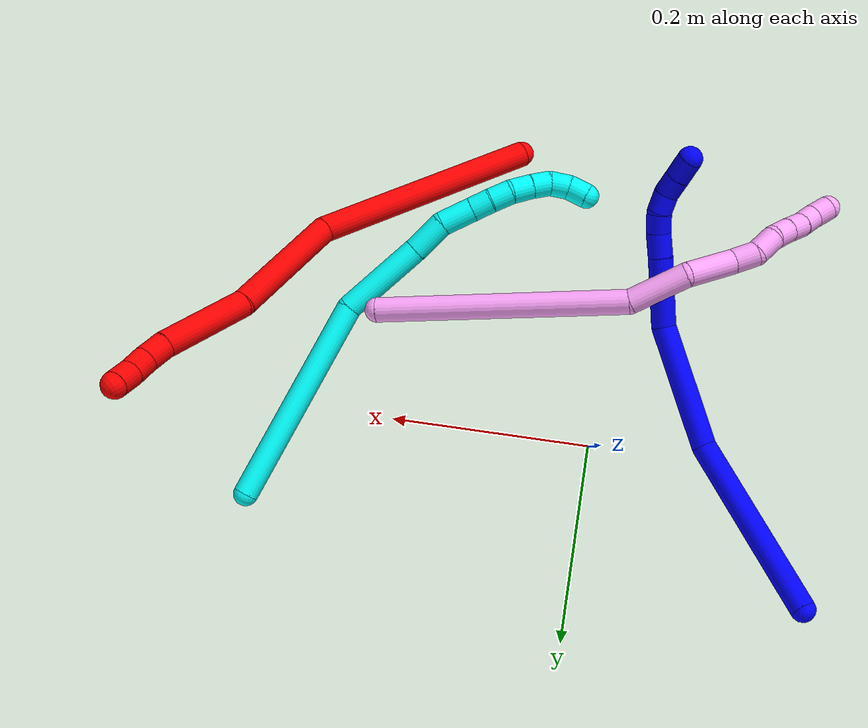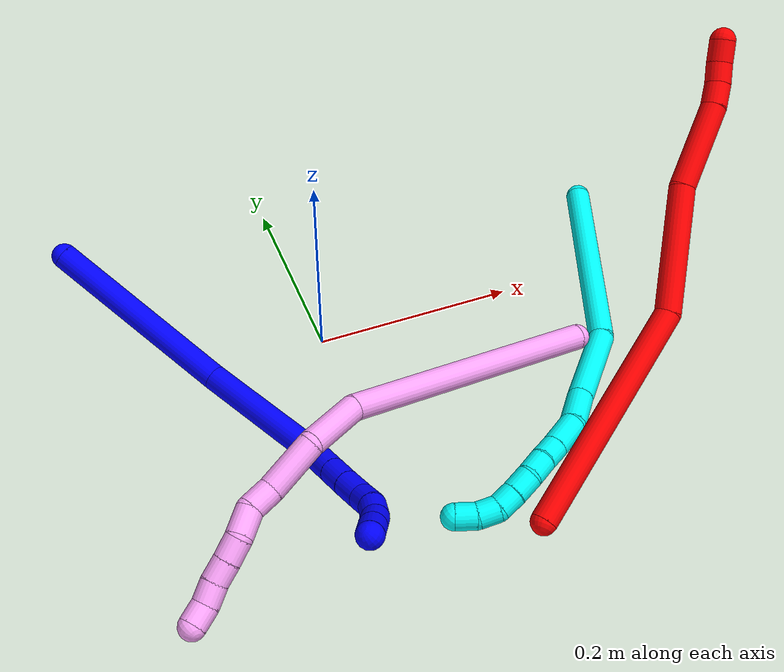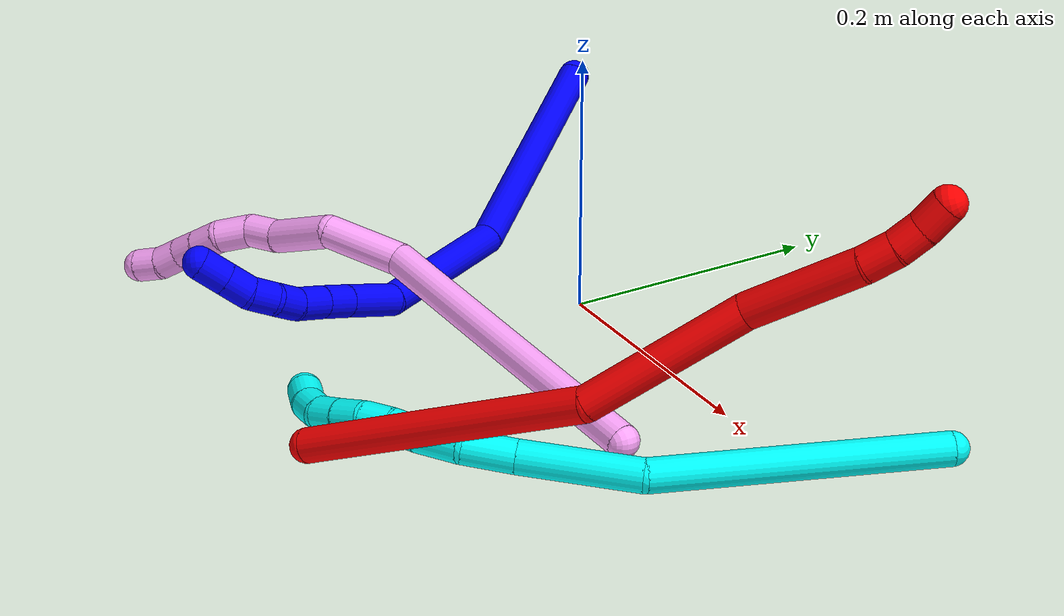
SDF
<sdf version="1.7">
 <world name="default">
  <plugin name="TubeGeneratorPlugin" filename="libtube_generator_plugin.so"/>
  <model name="photoneo_s_sensor">
   <static>1</static>
   <pose>0 0 2 1.57079 1.57079 3.14159</pose>
   <link name="link">
    <inertial><mass>0.1</mass></inertial>
    <sensor name="sensor" type="depth">
     <update_rate>30</update_rate>
     <camera>
      <horizontal_fov>1.22</horizontal_fov>
      <image><width>1920</width><height>1200</height><format>B8G8R8</format></image>
      <clip><near>0.1</near><far>4</far></clip>
      <depth_camera><output>points</output></depth_camera>
     </camera>
     <plugin name="camera_plugin" filename="libgazebo_ros_depth_camera.so">
      <baseline>0.2</baseline>
      <alwaysOn>1</alwaysOn>
      <updateRate>0.0</updateRate>
      <cameraName>camera_ir</cameraName>
      <imageTopicName>/camera/color/image_raw</imageTopicName>
      <cameraInfoTopicName>/camera/color/camera_info</cameraInfoTopicName>
      <depthImageTopicName>/camera/depth/image_raw</depthImageTopicName>
      <depthImageCameraInfoTopicName>/camera/depth/camera_info</depthImageCameraInfoTopicName>
      <pointCloudTopicName>/camera/depth/points</pointCloudTopicName>
      <frameName>fr_optical</frameName>
      <pointCloudCutoff>0.1</pointCloudCutoff>
      <pointCloudCutoffMax>2.0</pointCloudCutoffMax>
      <distortionK1>0</distortionK1>
      <distortionK2>0</distortionK2>
      <distortionK3>0</distortionK3>
      <distortionT1>0</distortionT1>
      <distortionT2>0</distortionT2>
      <CxPrime>0</CxPrime>
      <Cx>0</Cx>
      <Cy>0</Cy>
      <focalLength>0</focalLength>
      <hackBaseline>0</hackBaseline>
     </plugin>
    </sensor>
   </link>
  </model>
  <gravity>0 0 -9.8</gravity>
  <magnetic_field>6e-06 2.3e-05 -4.2e-05</magnetic_field>
  <atmosphere type="adiabatic"/>
  <physics name="default_physics" default="0" type="ode">
   <max_step_size>0.003</max_step_size>
   <real_time_factor>1</real_time_factor>
   <real_time_update_rate>1000</real_time_update_rate>
   <max_contacts>10000</max_contacts>
   <ode>
    <solver>
     <type>quick</type>
     <iters>100</iters>
     <sor>1.3</sor>
     <use_dynamic_moi_rescaling>0</use_dynamic_moi_rescaling>
    </solver>
    <constraints>
     <contact_max_correcting_vel>0</contact_max_correcting_vel>
     <contact_surface_layer>0.001</contact_surface_layer>
     <cfm>0</cfm>
     <erp>0.2</erp>
    </constraints>
   </ode>
  </physics>
  <scene><ambient>0.4 0.4 0.4 1</ambient><background>0.7 0.7 0.7 1</background><shadows>0</shadows></scene>
  <audio><device>default</device></audio>
  <spherical_coordinates>
   <surface_model>EARTH_WGS84</surface_model>
   <latitude_deg>0</latitude_deg>
   <longitude_deg>0</longitude_deg>
   <elevation>0</elevation>
   <heading_deg>0</heading_deg>
  </spherical_coordinates>
  <model name="bin">
   <static>1</static>
   <link name="bottom">
    <collision name="collision-bottom">
     <pose>0 0 -0.01 0 -0 0</pose>
     <geometry><box><size>0.8 0.6 0.02</size></box></geometry>
     <surface>
      <friction><ode><mu>100</mu><mu2>100</mu2></ode></friction>
      <contact><collide_bitmask>65535</collide_bitmask></contact>
     </surface>
    </collision>
   </link>
   <link name="west_wall">
    <collision name="collision-west_wall">
     <pose>-0.41 0 0.1 0 -0 0</pose>
     <geometry><box><size>0.02 0.6 0.2</size></box></geometry>
     <surface>
      <friction><ode><mu>100</mu><mu2>100</mu2></ode></friction>
      <contact><collide_bitmask>65535</collide_bitmask></contact>
     </surface>
    </collision>
   </link>
   <link name="east_wall">
    <collision name="collision-east_wall">
     <pose>0.41 0 0.1 0 -0 0</pose>
     <geometry><box><size>0.02 0.6 0.2</size></box></geometry>
     <surface>
      <friction><ode><mu>100</mu><mu2>100</mu2></ode></friction>
      <contact><collide_bitmask>65535</collide_bitmask></contact>
     </surface>
    </collision>
   </link>
   <link name="south_wall">
    <collision name="collision-south_wall">
     <pose>0 -0.31 0.1 0 -0 0</pose>
     <geometry><box><size>0.8 0.02 0.2</size></box></geometry>
     <surface>
      <friction><ode><mu>100</mu><mu2>100</mu2></ode></friction>
      <contact><collide_bitmask>65535</collide_bitmask></contact>
     </surface>
    </collision>
   </link>
   <link name="north_wall">
    <collision name="collision-north_wall">
     <pose>0 0.31 0.1 0 -0 0</pose>
     <geometry><box><size>0.8 0.02 0.2</size></box></geometry>
     <surface>
      <friction><ode><mu>100</mu><mu2>100</mu2></ode></friction>
      <contact><collide_bitmask>65535</collide_bitmask></contact>
     </surface>
    </collision>
   </link>
  </model>
  <model name="1">
   <static>0</static>
   <link name="1">
    <collision name="collision-cylinder-e_1_1_4">
     <pose>0.023483 -0.064623 -0.066367 2.36951 0.24828 0.595759</pose>
     <geometry><cylinder><radius>0.0125</radius><length>0.191125</length></cylinder></geometry>
     <surface>
      <friction><ode><mu>1.16</mu><mu2>1.16</mu2><slip1>0</slip1><slip2>0</slip2></ode></friction>
      <contact><ode><kp>1e+06</kp><kd>1</kd><max_vel>0</max_vel><min_depth>0.001</min_depth></ode></contact>
     </surface>
    </collision>
    <visual name="visual-cylinder-e_1_1_4">
     <pose>0.023483 -0.064623 -0.066367 2.36951 0.24828 0.595759</pose>
     <geometry><cylinder><radius>0.0125</radius><length>0.191125</length></cylinder></geometry>
     <material><ambient>0 0 1 1</ambient></material>
    </visual>
    <collision name="collision-cylinder-e_2_4_5">
     <pose>0.067709 -0.185803 -0.154476 1.93781 0.329825 0.47539</pose>
     <geometry><cylinder><radius>0.0125</radius><length>0.128088</length></cylinder></geometry>
     <surface>
      <friction><ode><mu>1.16</mu><mu2>1.16</mu2><slip1>0</slip1><slip2>0</slip2></ode></friction>
      <contact><ode><kp>1e+06</kp><kd>1</kd><max_vel>0</max_vel><min_depth>0.001</min_depth></ode></contact>
     </surface>
    </collision>
    <visual name="visual-cylinder-e_2_4_5">
     <pose>0.067709 -0.185803 -0.154476 1.93781 0.329825 0.47539</pose>
     <geometry><cylinder><radius>0.0125</radius><length>0.128088</length></cylinder></geometry>
     <material><ambient>0 0 1 1</ambient></material>
    </visual>
    <collision name="collision-cylinder-e_3_5_6">
     <pose>0.094476 -0.264981 -0.175436 1.53625 0.260136 0.251396</pose>
     <geometry><cylinder><radius>0.0125</radius><length>0.046847</length></cylinder></geometry>
     <surface>
      <friction><ode><mu>1.16</mu><mu2>1.16</mu2><slip1>0</slip1><slip2>0</slip2></ode></friction>
      <contact><ode><kp>1e+06</kp><kd>1</kd><max_vel>0</max_vel><min_depth>0.001</min_depth></ode></contact>
     </surface>
    </collision>
    <visual name="visual-cylinder-e_3_5_6">
     <pose>0.094476 -0.264981 -0.175436 1.53625 0.260136 0.251396</pose>
     <geometry><cylinder><radius>0.0125</radius><length>0.046847</length></cylinder></geometry>
     <material><ambient>0 0 1 1</ambient></material>
    </visual>
    <collision name="collision-cylinder-e_4_6_7">
     <pose>0.103639 -0.29947 -0.174391 1.54862 0.25849 0.252882</pose>
     <geometry><cylinder><radius>0.0125</radius><length>0.024555</length></cylinder></geometry>
     <surface>
      <friction><ode><mu>1.16</mu><mu2>1.16</mu2><slip1>0</slip1><slip2>0</slip2></ode></friction>
      <contact><ode><kp>1e+06</kp><kd>1</kd><max_vel>0</max_vel><min_depth>0.001</min_depth></ode></contact>
     </surface>
    </collision>
    <visual name="visual-cylinder-e_4_6_7">
     <pose>0.103639 -0.29947 -0.174391 1.54862 0.25849 0.252882</pose>
     <geometry><cylinder><radius>0.0125</radius><length>0.024555</length></cylinder></geometry>
     <material><ambient>0 0 1 1</ambient></material>
    </visual>
    <collision name="collision-cylinder-e_5_7_8">
     <pose>0.110244 -0.323452 -0.174169 1.5742 0.278711 0.27965</pose>
     <geometry><cylinder><radius>0.0125</radius><length>0.025203</length></cylinder></geometry>
     <surface>
      <friction><ode><mu>1.16</mu><mu2>1.16</mu2><slip1>0</slip1><slip2>0</slip2></ode></friction>
      <contact><ode><kp>1e+06</kp><kd>1</kd><max_vel>0</max_vel><min_depth>0.001</min_depth></ode></contact>
     </surface>
    </collision>
    <visual name="visual-cylinder-e_5_7_8">
     <pose>0.110244 -0.323452 -0.174169 1.5742 0.278711 0.27965</pose>
     <geometry><cylinder><radius>0.0125</radius><length>0.025203</length></cylinder></geometry>
     <material><ambient>0 0 1 1</ambient></material>
    </visual>
    <collision name="collision-cylinder-e_6_8_9">
     <pose>0.116653 -0.345308 -0.171852 1.33328 0.285468 0.225187</pose>
     <geometry><cylinder><radius>0.0125</radius><length>0.02089</length></cylinder></geometry>
     <surface>
      <friction><ode><mu>1.16</mu><mu2>1.16</mu2><slip1>0</slip1><slip2>0</slip2></ode></friction>
      <contact><ode><kp>1e+06</kp><kd>1</kd><max_vel>0</max_vel><min_depth>0.001</min_depth></ode></contact>
     </surface>
    </collision>
    <visual name="visual-cylinder-e_6_8_9">
     <pose>0.116653 -0.345308 -0.171852 1.33328 0.285468 0.225187</pose>
     <geometry><cylinder><radius>0.0125</radius><length>0.02089</length></cylinder></geometry>
     <material><ambient>0 0 1 1</ambient></material>
    </visual>
    <collision name="collision-cylinder-e_7_9_10">
     <pose>0.119175 -0.364635 -0.166361 1.25487 -0.04152 -0.030112</pose>
     <geometry><cylinder><radius>0.0125</radius><length>0.020187</length></cylinder></geometry>
     <surface>
      <friction><ode><mu>1.16</mu><mu2>1.16</mu2><slip1>0</slip1><slip2>0</slip2></ode></friction>
      <contact><ode><kp>1e+06</kp><kd>1</kd><max_vel>0</max_vel><min_depth>0.001</min_depth></ode></contact>
     </surface>
    </collision>
    <visual name="visual-cylinder-e_7_9_10">
     <pose>0.119175 -0.364635 -0.166361 1.25487 -0.04152 -0.030112</pose>
     <geometry><cylinder><radius>0.0125</radius><length>0.020187</length></cylinder></geometry>
     <material><ambient>0 0 1 1</ambient></material>
    </visual>
    <collision name="collision-cylinder-e_8_10_11">
     <pose>0.117742 -0.382475 -0.157229 0.94242 -0.099107 -0.050525</pose>
     <geometry><cylinder><radius>0.0125</radius><length>0.020508</length></cylinder></geometry>
     <surface>
      <friction><ode><mu>1.16</mu><mu2>1.16</mu2><slip1>0</slip1><slip2>0</slip2></ode></friction>
      <contact><ode><kp>1e+06</kp><kd>1</kd><max_vel>0</max_vel><min_depth>0.001</min_depth></ode></contact>
     </surface>
    </collision>
    <visual name="visual-cylinder-e_8_10_11">
     <pose>0.117742 -0.382475 -0.157229 0.94242 -0.099107 -0.050525</pose>
     <geometry><cylinder><radius>0.0125</radius><length>0.020508</length></cylinder></geometry>
     <material><ambient>0 0 1 1</ambient></material>
    </visual>
    <collision name="collision-cylinder-e_9_11_2">
     <pose>0.115716 -0.399835 -0.144619 0.942688 -0.089612 -0.045694</pose>
     <geometry><cylinder><radius>0.0125</radius><length>0.022597</length></cylinder></geometry>
     <surface>
      <friction><ode><mu>1.16</mu><mu2>1.16</mu2><slip1>0</slip1><slip2>0</slip2></ode></friction>
      <contact><ode><kp>1e+06</kp><kd>1</kd><max_vel>0</max_vel><min_depth>0.001</min_depth></ode></contact>
     </surface>
    </collision>
    <visual name="visual-cylinder-e_9_11_2">
     <pose>0.115716 -0.399835 -0.144619 0.942688 -0.089612 -0.045694</pose>
     <geometry><cylinder><radius>0.0125</radius><length>0.022597</length></cylinder></geometry>
     <material><ambient>0 0 1 1</ambient></material>
    </visual>
    <collision name="collision-sphere-2">
     <pose>0.114705 -0.40894 -0.138006 0 -0 0</pose>
     <geometry><sphere><radius>0.0125</radius></sphere></geometry>
     <surface>
      <friction><ode><mu>1.16</mu><mu2>1.16</mu2><slip1>0</slip1><slip2>0</slip2></ode></friction>
      <contact><ode><kp>1e+06</kp><kd>1</kd><max_vel>0</max_vel><min_depth>0.001</min_depth></ode></contact>
     </surface>
    </collision>
    <visual name="visual-sphere-2">
     <pose>0.114705 -0.40894 -0.138006 0 -0 0</pose>
     <geometry><sphere><radius>0.0125</radius></sphere></geometry>
     <material><ambient>0 0 1 1</ambient></material>
    </visual>
    <collision name="collision-sphere-11">
     <pose>0.116727 -0.39073 -0.151231 0 -0 0</pose>
     <geometry><sphere><radius>0.0125</radius></sphere></geometry>
     <surface>
      <friction><ode><mu>1.16</mu><mu2>1.16</mu2><slip1>0</slip1><slip2>0</slip2></ode></friction>
      <contact><ode><kp>1e+06</kp><kd>1</kd><max_vel>0</max_vel><min_depth>0.001</min_depth></ode></contact>
     </surface>
    </collision>
    <visual name="visual-sphere-11">
     <pose>0.116727 -0.39073 -0.151231 0 -0 0</pose>
     <geometry><sphere><radius>0.0125</radius></sphere></geometry>
     <material><ambient>0 0 1 1</ambient></material>
    </visual>
    <collision name="collision-sphere-10">
     <pose>0.118756 -0.37422 -0.163228 0 -0 0</pose>
     <geometry><sphere><radius>0.0125</radius></sphere></geometry>
     <surface>
      <friction><ode><mu>1.16</mu><mu2>1.16</mu2><slip1>0</slip1><slip2>0</slip2></ode></friction>
      <contact><ode><kp>1e+06</kp><kd>1</kd><max_vel>0</max_vel><min_depth>0.001</min_depth></ode></contact>
     </surface>
    </collision>
    <visual name="visual-sphere-10">
     <pose>0.118756 -0.37422 -0.163228 0 -0 0</pose>
     <geometry><sphere><radius>0.0125</radius></sphere></geometry>
     <material><ambient>0 0 1 1</ambient></material>
    </visual>
    <collision name="collision-sphere-9">
     <pose>0.119594 -0.355049 -0.169494 0 -0 0</pose>
     <geometry><sphere><radius>0.0125</radius></sphere></geometry>
     <surface>
      <friction><ode><mu>1.16</mu><mu2>1.16</mu2><slip1>0</slip1><slip2>0</slip2></ode></friction>
      <contact><ode><kp>1e+06</kp><kd>1</kd><max_vel>0</max_vel><min_depth>0.001</min_depth></ode></contact>
     </surface>
    </collision>
    <visual name="visual-sphere-9">
     <pose>0.119594 -0.355049 -0.169494 0 -0 0</pose>
     <geometry><sphere><radius>0.0125</radius></sphere></geometry>
     <material><ambient>0 0 1 1</ambient></material>
    </visual>
    <collision name="collision-sphere-4">
     <pose>0.046966 -0.129246 -0.132734 0 -0 0</pose>
     <geometry><sphere><radius>0.0125</radius></sphere></geometry>
     <surface>
      <friction><ode><mu>1.16</mu><mu2>1.16</mu2><slip1>0</slip1><slip2>0</slip2></ode></friction>
      <contact><ode><kp>1e+06</kp><kd>1</kd><max_vel>0</max_vel><min_depth>0.001</min_depth></ode></contact>
     </surface>
    </collision>
    <visual name="visual-sphere-4">
     <pose>0.046966 -0.129246 -0.132734 0 -0 0</pose>
     <geometry><sphere><radius>0.0125</radius></sphere></geometry>
     <material><ambient>0 0 1 1</ambient></material>
    </visual>
    <collision name="collision-sphere-1">
     <geometry><sphere><radius>0.0125</radius></sphere></geometry>
     <surface>
      <friction><ode><mu>1.16</mu><mu2>1.16</mu2><slip1>0</slip1><slip2>0</slip2></ode></friction>
      <contact><ode><kp>1e+06</kp><kd>1</kd><max_vel>0</max_vel><min_depth>0.001</min_depth></ode></contact>
     </surface>
    </collision>
    <visual name="visual-sphere-1">
     <geometry><sphere><radius>0.0125</radius></sphere></geometry>
     <material><ambient>0 0 1 1</ambient></material>
    </visual>
    <collision name="collision-sphere-8">
     <pose>0.113711 -0.335567 -0.174211 0 -0 0</pose>
     <geometry><sphere><radius>0.0125</radius></sphere></geometry>
     <surface>
      <friction><ode><mu>1.16</mu><mu2>1.16</mu2><slip1>0</slip1><slip2>0</slip2></ode></friction>
      <contact><ode><kp>1e+06</kp><kd>1</kd><max_vel>0</max_vel><min_depth>0.001</min_depth></ode></contact>
     </surface>
    </collision>
    <visual name="visual-sphere-8">
     <pose>0.113711 -0.335567 -0.174211 0 -0 0</pose>
     <geometry><sphere><radius>0.0125</radius></sphere></geometry>
     <material><ambient>0 0 1 1</ambient></material>
    </visual>
    <collision name="collision-sphere-5">
     <pose>0.088451 -0.242359 -0.176218 0 -0 0</pose>
     <geometry><sphere><radius>0.0125</radius></sphere></geometry>
     <surface>
      <friction><ode><mu>1.16</mu><mu2>1.16</mu2><slip1>0</slip1><slip2>0</slip2></ode></friction>
      <contact><ode><kp>1e+06</kp><kd>1</kd><max_vel>0</max_vel><min_depth>0.001</min_depth></ode></contact>
     </surface>
    </collision>
    <visual name="visual-sphere-5">
     <pose>0.088451 -0.242359 -0.176218 0 -0 0</pose>
     <geometry><sphere><radius>0.0125</radius></sphere></geometry>
     <material><ambient>0 0 1 1</ambient></material>
    </visual>
    <collision name="collision-sphere-6">
     <pose>0.100501 -0.287603 -0.174654 0 -0 0</pose>
     <geometry><sphere><radius>0.0125</radius></sphere></geometry>
     <surface>
      <friction><ode><mu>1.16</mu><mu2>1.16</mu2><slip1>0</slip1><slip2>0</slip2></ode></friction>
      <contact><ode><kp>1e+06</kp><kd>1</kd><max_vel>0</max_vel><min_depth>0.001</min_depth></ode></contact>
     </surface>
    </collision>
    <visual name="visual-sphere-6">
     <pose>0.100501 -0.287603 -0.174654 0 -0 0</pose>
     <geometry><sphere><radius>0.0125</radius></sphere></geometry>
     <material><ambient>0 0 1 1</ambient></material>
    </visual>
    <collision name="collision-sphere-7">
     <pose>0.106777 -0.311337 -0.174128 0 -0 0</pose>
     <geometry><sphere><radius>0.0125</radius></sphere></geometry>
     <surface>
      <friction><ode><mu>1.16</mu><mu2>1.16</mu2><slip1>0</slip1><slip2>0</slip2></ode></friction>
      <contact><ode><kp>1e+06</kp><kd>1</kd><max_vel>0</max_vel><min_depth>0.001</min_depth></ode></contact>
     </surface>
    </collision>
    <visual name="visual-sphere-7">
     <pose>0.106777 -0.311337 -0.174128 0 -0 0</pose>
     <geometry><sphere><radius>0.0125</radius></sphere></geometry>
     <material><ambient>0 0 1 1</ambient></material>
    </visual>
    <inertial>
     <pose>0.065565 -0.191045 -0.125604 0 -0 0</pose>
     <mass>0.5</mass>
     <inertia><ixx>0.001056</ixx><ixy>0</ixy><ixz>0</ixz><iyy>4.9e-05</iyy><iyz>0</iyz><izz>0.00036</izz></inertia>
    </inertial>
   </link>
   <pose>-0.220898 0.126138 0.083427 -0.178925 -0.499936 0.083074</pose>
  </model>
  <model name="2">
   <static>0</static>
   <link name="2">
    <collision name="collision-cylinder-e_1_1_4">
     <pose>0.02178 0.006157 0.11132 -0.055253 0.192924 -0.005348</pose>
     <geometry><cylinder><radius>0.0125</radius><length>0.227195</length></cylinder></geometry>
     <surface>
      <friction><ode><mu>1.16</mu><mu2>1.16</mu2><slip1>0</slip1><slip2>0</slip2></ode></friction>
      <contact><ode><kp>1e+06</kp><kd>1</kd><max_vel>0</max_vel><min_depth>0.001</min_depth></ode></contact>
     </surface>
    </collision>
    <visual name="visual-cylinder-e_1_1_4">
     <pose>0.02178 0.006157 0.11132 -0.055253 0.192924 -0.005348</pose>
     <geometry><cylinder><radius>0.0125</radius><length>0.227195</length></cylinder></geometry>
     <material><ambient>1 0 0 1</ambient></material>
    </visual>
    <collision name="collision-cylinder-e_2_4_5">
     <pose>0.036728 -0.003458 0.281123 0.263408 -0.112316 -0.014894</pose>
     <geometry><cylinder><radius>0.0125</radius><length>0.121914</length></cylinder></geometry>
     <surface>
      <friction><ode><mu>1.16</mu><mu2>1.16</mu2><slip1>0</slip1><slip2>0</slip2></ode></friction>
      <contact><ode><kp>1e+06</kp><kd>1</kd><max_vel>0</max_vel><min_depth>0.001</min_depth></ode></contact>
     </surface>
    </collision>
    <visual name="visual-cylinder-e_2_4_5">
     <pose>0.036728 -0.003458 0.281123 0.263408 -0.112316 -0.014894</pose>
     <geometry><cylinder><radius>0.0125</radius><length>0.121914</length></cylinder></geometry>
     <material><ambient>1 0 0 1</ambient></material>
    </visual>
    <collision name="collision-cylinder-e_3_5_6">
     <pose>0.034065 -0.024615 0.381818 0.126905 0.097669 0.006211</pose>
     <geometry><cylinder><radius>0.0125</radius><length>0.085515</length></cylinder></geometry>
     <surface>
      <friction><ode><mu>1.16</mu><mu2>1.16</mu2><slip1>0</slip1><slip2>0</slip2></ode></friction>
      <contact><ode><kp>1e+06</kp><kd>1</kd><max_vel>0</max_vel><min_depth>0.001</min_depth></ode></contact>
     </surface>
    </collision>
    <visual name="visual-cylinder-e_3_5_6">
     <pose>0.034065 -0.024615 0.381818 0.126905 0.097669 0.006211</pose>
     <geometry><cylinder><radius>0.0125</radius><length>0.085515</length></cylinder></geometry>
     <material><ambient>1 0 0 1</ambient></material>
    </visual>
    <collision name="collision-cylinder-e_4_6_7">
     <pose>0.037633 -0.032494 0.435333 0.217127 -0.05194 -0.005662</pose>
     <geometry><cylinder><radius>0.0125</radius><length>0.023183</length></cylinder></geometry>
     <surface>
      <friction><ode><mu>1.16</mu><mu2>1.16</mu2><slip1>0</slip1><slip2>0</slip2></ode></friction>
      <contact><ode><kp>1e+06</kp><kd>1</kd><max_vel>0</max_vel><min_depth>0.001</min_depth></ode></contact>
     </surface>
    </collision>
    <visual name="visual-cylinder-e_4_6_7">
     <pose>0.037633 -0.032494 0.435333 0.217127 -0.05194 -0.005662</pose>
     <geometry><cylinder><radius>0.0125</radius><length>0.023183</length></cylinder></geometry>
     <material><ambient>1 0 0 1</ambient></material>
    </visual>
    <collision name="collision-cylinder-e_5_7_8">
     <pose>0.035994 -0.038759 0.456133 0.378006 -0.101205 -0.019375</pose>
     <geometry><cylinder><radius>0.0125</radius><length>0.020539</length></cylinder></geometry>
     <surface>
      <friction><ode><mu>1.16</mu><mu2>1.16</mu2><slip1>0</slip1><slip2>0</slip2></ode></friction>
      <contact><ode><kp>1e+06</kp><kd>1</kd><max_vel>0</max_vel><min_depth>0.001</min_depth></ode></contact>
     </surface>
    </collision>
    <visual name="visual-cylinder-e_5_7_8">
     <pose>0.035994 -0.038759 0.456133 0.378006 -0.101205 -0.019375</pose>
     <geometry><cylinder><radius>0.0125</radius><length>0.020539</length></cylinder></geometry>
     <material><ambient>1 0 0 1</ambient></material>
    </visual>
    <collision name="collision-cylinder-e_6_8_2">
     <pose>0.034954 -0.047842 0.475063 0.512848 -0.000247 -6.5e-05</pose>
     <geometry><cylinder><radius>0.0125</radius><length>0.021655</length></cylinder></geometry>
     <surface>
      <friction><ode><mu>1.16</mu><mu2>1.16</mu2><slip1>0</slip1><slip2>0</slip2></ode></friction>
      <contact><ode><kp>1e+06</kp><kd>1</kd><max_vel>0</max_vel><min_depth>0.001</min_depth></ode></contact>
     </surface>
    </collision>
    <visual name="visual-cylinder-e_6_8_2">
     <pose>0.034954 -0.047842 0.475063 0.512848 -0.000247 -6.5e-05</pose>
     <geometry><cylinder><radius>0.0125</radius><length>0.021655</length></cylinder></geometry>
     <material><ambient>1 0 0 1</ambient></material>
    </visual>
    <collision name="collision-sphere-2">
     <pose>0.034951 -0.053155 0.484498 0 -0 0</pose>
     <geometry><sphere><radius>0.0125</radius></sphere></geometry>
     <surface>
      <friction><ode><mu>1.16</mu><mu2>1.16</mu2><slip1>0</slip1><slip2>0</slip2></ode></friction>
      <contact><ode><kp>1e+06</kp><kd>1</kd><max_vel>0</max_vel><min_depth>0.001</min_depth></ode></contact>
     </surface>
    </collision>
    <visual name="visual-sphere-2">
     <pose>0.034951 -0.053155 0.484498 0 -0 0</pose>
     <geometry><sphere><radius>0.0125</radius></sphere></geometry>
     <material><ambient>1 0 0 1</ambient></material>
    </visual>
    <collision name="collision-sphere-4">
     <pose>0.04356 0.012314 0.222639 0 -0 0</pose>
     <geometry><sphere><radius>0.0125</radius></sphere></geometry>
     <surface>
      <friction><ode><mu>1.16</mu><mu2>1.16</mu2><slip1>0</slip1><slip2>0</slip2></ode></friction>
      <contact><ode><kp>1e+06</kp><kd>1</kd><max_vel>0</max_vel><min_depth>0.001</min_depth></ode></contact>
     </surface>
    </collision>
    <visual name="visual-sphere-4">
     <pose>0.04356 0.012314 0.222639 0 -0 0</pose>
     <geometry><sphere><radius>0.0125</radius></sphere></geometry>
     <material><ambient>1 0 0 1</ambient></material>
    </visual>
    <collision name="collision-sphere-1">
     <geometry><sphere><radius>0.0125</radius></sphere></geometry>
     <surface>
      <friction><ode><mu>1.16</mu><mu2>1.16</mu2><slip1>0</slip1><slip2>0</slip2></ode></friction>
      <contact><ode><kp>1e+06</kp><kd>1</kd><max_vel>0</max_vel><min_depth>0.001</min_depth></ode></contact>
     </surface>
    </collision>
    <visual name="visual-sphere-1">
     <geometry><sphere><radius>0.0125</radius></sphere></geometry>
     <material><ambient>1 0 0 1</ambient></material>
    </visual>
    <collision name="collision-sphere-8">
     <pose>0.034956 -0.042529 0.465628 0 -0 0</pose>
     <geometry><sphere><radius>0.0125</radius></sphere></geometry>
     <surface>
      <friction><ode><mu>1.16</mu><mu2>1.16</mu2><slip1>0</slip1><slip2>0</slip2></ode></friction>
      <contact><ode><kp>1e+06</kp><kd>1</kd><max_vel>0</max_vel><min_depth>0.001</min_depth></ode></contact>
     </surface>
    </collision>
    <visual name="visual-sphere-8">
     <pose>0.034956 -0.042529 0.465628 0 -0 0</pose>
     <geometry><sphere><radius>0.0125</radius></sphere></geometry>
     <material><ambient>1 0 0 1</ambient></material>
    </visual>
    <collision name="collision-sphere-5">
     <pose>0.029896 -0.019229 0.339606 0 -0 0</pose>
     <geometry><sphere><radius>0.0125</radius></sphere></geometry>
     <surface>
      <friction><ode><mu>1.16</mu><mu2>1.16</mu2><slip1>0</slip1><slip2>0</slip2></ode></friction>
      <contact><ode><kp>1e+06</kp><kd>1</kd><max_vel>0</max_vel><min_depth>0.001</min_depth></ode></contact>
     </surface>
    </collision>
    <visual name="visual-sphere-5">
     <pose>0.029896 -0.019229 0.339606 0 -0 0</pose>
     <geometry><sphere><radius>0.0125</radius></sphere></geometry>
     <material><ambient>1 0 0 1</ambient></material>
    </visual>
    <collision name="collision-sphere-6">
     <pose>0.038235 -0.030001 0.424029 0 -0 0</pose>
     <geometry><sphere><radius>0.0125</radius></sphere></geometry>
     <surface>
      <friction><ode><mu>1.16</mu><mu2>1.16</mu2><slip1>0</slip1><slip2>0</slip2></ode></friction>
      <contact><ode><kp>1e+06</kp><kd>1</kd><max_vel>0</max_vel><min_depth>0.001</min_depth></ode></contact>
     </surface>
    </collision>
    <visual name="visual-sphere-6">
     <pose>0.038235 -0.030001 0.424029 0 -0 0</pose>
     <geometry><sphere><radius>0.0125</radius></sphere></geometry>
     <material><ambient>1 0 0 1</ambient></material>
    </visual>
    <collision name="collision-sphere-7">
     <pose>0.037031 -0.034988 0.446637 0 -0 0</pose>
     <geometry><sphere><radius>0.0125</radius></sphere></geometry>
     <surface>
      <friction><ode><mu>1.16</mu><mu2>1.16</mu2><slip1>0</slip1><slip2>0</slip2></ode></friction>
      <contact><ode><kp>1e+06</kp><kd>1</kd><max_vel>0</max_vel><min_depth>0.001</min_depth></ode></contact>
     </surface>
    </collision>
    <visual name="visual-sphere-7">
     <pose>0.037031 -0.034988 0.446637 0 -0 0</pose>
     <geometry><sphere><radius>0.0125</radius></sphere></geometry>
     <material><ambient>1 0 0 1</ambient></material>
    </visual>
    <inertial>
     <pose>0.029415 -0.007426 0.243927 0 -0 0</pose>
     <mass>0.5</mass>
     <inertia>
      <ixx>0.001178</ixx>
      <ixy>0</ixy>
      <ixz>0</ixz>
      <iyy>0.001184</iyy>
      <iyz>0</iyz>
      <izz>-0.000143</izz>
     </inertia>
    </inertial>
   </link>
   <pose>0.108603 -0.285015 0.012329 -1.16744 -0.265861 -0.879567</pose>
  </model>
  <model name="3">
   <static>0</static>
   <link name="3">
    <collision name="collision-cylinder-e_1_1_4">
     <pose>-0.098235 -0.02437 0.035435 0.602453 -1.15814 -0.400818</pose>
     <geometry><cylinder><radius>0.0125</radius><length>0.214473</length></cylinder></geometry>
     <surface>
      <friction><ode><mu>1.16</mu><mu2>1.16</mu2><slip1>0</slip1><slip2>0</slip2></ode></friction>
      <contact><ode><kp>1e+06</kp><kd>1</kd><max_vel>0</max_vel><min_depth>0.001</min_depth></ode></contact>
     </surface>
    </collision>
    <visual name="visual-cylinder-e_1_1_4">
     <pose>-0.098235 -0.02437 0.035435 0.602453 -1.15814 -0.400818</pose>
     <geometry><cylinder><radius>0.0125</radius><length>0.214473</length></cylinder></geometry>
     <material><ambient>0.003922 1 0.996078 1</ambient></material>
    </visual>
    <collision name="collision-cylinder-e_2_4_5">
     <pose>-0.228605 -0.070683 0.092054 0.802982 -0.811501 -0.360799</pose>
     <geometry><cylinder><radius>0.0125</radius><length>0.088609</length></cylinder></geometry>
     <surface>
      <friction><ode><mu>1.16</mu><mu2>1.16</mu2><slip1>0</slip1><slip2>0</slip2></ode></friction>
      <contact><ode><kp>1e+06</kp><kd>1</kd><max_vel>0</max_vel><min_depth>0.001</min_depth></ode></contact>
     </surface>
    </collision>
    <visual name="visual-cylinder-e_2_4_5">
     <pose>-0.228605 -0.070683 0.092054 0.802982 -0.811501 -0.360799</pose>
     <geometry><cylinder><radius>0.0125</radius><length>0.088609</length></cylinder></geometry>
     <material><ambient>0.003922 1 0.996078 1</ambient></material>
    </visual>
    <collision name="collision-cylinder-e_3_5_6">
     <pose>-0.275152 -0.102295 0.120817 0.906066 -0.864839 -0.442028</pose>
     <geometry><cylinder><radius>0.0125</radius><length>0.037876</length></cylinder></geometry>
     <surface>
      <friction><ode><mu>1.16</mu><mu2>1.16</mu2><slip1>0</slip1><slip2>0</slip2></ode></friction>
      <contact><ode><kp>1e+06</kp><kd>1</kd><max_vel>0</max_vel><min_depth>0.001</min_depth></ode></contact>
     </surface>
    </collision>
    <visual name="visual-cylinder-e_3_5_6">
     <pose>-0.275152 -0.102295 0.120817 0.906066 -0.864839 -0.442028</pose>
     <geometry><cylinder><radius>0.0125</radius><length>0.037876</length></cylinder></geometry>
     <material><ambient>0.003922 1 0.996078 1</ambient></material>
    </visual>
    <collision name="collision-cylinder-e_4_6_7">
     <pose>-0.298319 -0.122128 0.138728 0.777087 -0.543499 -0.227145</pose>
     <geometry><cylinder><radius>0.0125</radius><length>0.033864</length></cylinder></geometry>
     <surface>
      <friction><ode><mu>1.16</mu><mu2>1.16</mu2><slip1>0</slip1><slip2>0</slip2></ode></friction>
      <contact><ode><kp>1e+06</kp><kd>1</kd><max_vel>0</max_vel><min_depth>0.001</min_depth></ode></contact>
     </surface>
    </collision>
    <visual name="visual-cylinder-e_4_6_7">
     <pose>-0.298319 -0.122128 0.138728 0.777087 -0.543499 -0.227145</pose>
     <geometry><cylinder><radius>0.0125</radius><length>0.033864</length></cylinder></geometry>
     <material><ambient>0.003922 1 0.996078 1</ambient></material>
    </visual>
    <collision name="collision-cylinder-e_5_7_8">
     <pose>-0.312415 -0.139352 0.154771 0.8908 -0.531466 -0.258417</pose>
     <geometry><cylinder><radius>0.0125</radius><length>0.02107</length></cylinder></geometry>
     <surface>
      <friction><ode><mu>1.16</mu><mu2>1.16</mu2><slip1>0</slip1><slip2>0</slip2></ode></friction>
      <contact><ode><kp>1e+06</kp><kd>1</kd><max_vel>0</max_vel><min_depth>0.001</min_depth></ode></contact>
     </surface>
    </collision>
    <visual name="visual-cylinder-e_5_7_8">
     <pose>-0.312415 -0.139352 0.154771 0.8908 -0.531466 -0.258417</pose>
     <geometry><cylinder><radius>0.0125</radius><length>0.02107</length></cylinder></geometry>
     <material><ambient>0.003922 1 0.996078 1</ambient></material>
    </visual>
    <collision name="collision-cylinder-e_6_8_9">
     <pose>-0.323109 -0.15286 0.167502 0.742797 -0.511875 -0.20313</pose>
     <geometry><cylinder><radius>0.0125</radius><length>0.021865</length></cylinder></geometry>
     <surface>
      <friction><ode><mu>1.16</mu><mu2>1.16</mu2><slip1>0</slip1><slip2>0</slip2></ode></friction>
      <contact><ode><kp>1e+06</kp><kd>1</kd><max_vel>0</max_vel><min_depth>0.001</min_depth></ode></contact>
     </surface>
    </collision>
    <visual name="visual-cylinder-e_6_8_9">
     <pose>-0.323109 -0.15286 0.167502 0.742797 -0.511875 -0.20313</pose>
     <geometry><cylinder><radius>0.0125</radius><length>0.021865</length></cylinder></geometry>
     <material><ambient>0.003922 1 0.996078 1</ambient></material>
    </visual>
    <collision name="collision-cylinder-e_7_9_10">
     <pose>-0.332349 -0.164409 0.183375 0.522914 -0.363357 -0.098233</pose>
     <geometry><cylinder><radius>0.0125</radius><length>0.021862</length></cylinder></geometry>
     <surface>
      <friction><ode><mu>1.16</mu><mu2>1.16</mu2><slip1>0</slip1><slip2>0</slip2></ode></friction>
      <contact><ode><kp>1e+06</kp><kd>1</kd><max_vel>0</max_vel><min_depth>0.001</min_depth></ode></contact>
     </surface>
    </collision>
    <visual name="visual-cylinder-e_7_9_10">
     <pose>-0.332349 -0.164409 0.183375 0.522914 -0.363357 -0.098233</pose>
     <geometry><cylinder><radius>0.0125</radius><length>0.021862</length></cylinder></geometry>
     <material><ambient>0.003922 1 0.996078 1</ambient></material>
    </visual>
    <collision name="collision-cylinder-e_8_10_11">
     <pose>-0.33907 -0.174426 0.200505 0.535723 -0.286497 -0.079132</pose>
     <geometry><cylinder><radius>0.0125</radius><length>0.020072</length></cylinder></geometry>
     <surface>
      <friction><ode><mu>1.16</mu><mu2>1.16</mu2><slip1>0</slip1><slip2>0</slip2></ode></friction>
      <contact><ode><kp>1e+06</kp><kd>1</kd><max_vel>0</max_vel><min_depth>0.001</min_depth></ode></contact>
     </surface>
    </collision>
    <visual name="visual-cylinder-e_8_10_11">
     <pose>-0.33907 -0.174426 0.200505 0.535723 -0.286497 -0.079132</pose>
     <geometry><cylinder><radius>0.0125</radius><length>0.020072</length></cylinder></geometry>
     <material><ambient>0.003922 1 0.996078 1</ambient></material>
    </visual>
    <collision name="collision-cylinder-e_9_11_12">
     <pose>-0.340986 -0.185896 0.216369 0.712731 0.091492 0.034079</pose>
     <geometry><cylinder><radius>0.0125</radius><length>0.020137</length></cylinder></geometry>
     <surface>
      <friction><ode><mu>1.16</mu><mu2>1.16</mu2><slip1>0</slip1><slip2>0</slip2></ode></friction>
      <contact><ode><kp>1e+06</kp><kd>1</kd><max_vel>0</max_vel><min_depth>0.001</min_depth></ode></contact>
     </surface>
    </collision>
    <visual name="visual-cylinder-e_9_11_12">
     <pose>-0.340986 -0.185896 0.216369 0.712731 0.091492 0.034079</pose>
     <geometry><cylinder><radius>0.0125</radius><length>0.020137</length></cylinder></geometry>
     <material><ambient>0.003922 1 0.996078 1</ambient></material>
    </visual>
    <collision name="collision-cylinder-e_10_12_2">
     <pose>-0.336449 -0.199541 0.23015 0.852511 0.366834 0.168075</pose>
     <geometry><cylinder><radius>0.0125</radius><length>0.020172</length></cylinder></geometry>
     <surface>
      <friction><ode><mu>1.16</mu><mu2>1.16</mu2><slip1>0</slip1><slip2>0</slip2></ode></friction>
      <contact><ode><kp>1e+06</kp><kd>1</kd><max_vel>0</max_vel><min_depth>0.001</min_depth></ode></contact>
     </surface>
    </collision>
    <visual name="visual-cylinder-e_10_12_2">
     <pose>-0.336449 -0.199541 0.23015 0.852511 0.366834 0.168075</pose>
     <geometry><cylinder><radius>0.0125</radius><length>0.020172</length></cylinder></geometry>
     <material><ambient>0.003922 1 0.996078 1</ambient></material>
    </visual>
    <collision name="collision-sphere-2">
     <pose>-0.332831 -0.20663 0.236346 0 -0 0</pose>
     <geometry><sphere><radius>0.0125</radius></sphere></geometry>
     <surface>
      <friction><ode><mu>1.16</mu><mu2>1.16</mu2><slip1>0</slip1><slip2>0</slip2></ode></friction>
      <contact><ode><kp>1e+06</kp><kd>1</kd><max_vel>0</max_vel><min_depth>0.001</min_depth></ode></contact>
     </surface>
    </collision>
    <visual name="visual-sphere-2">
     <pose>-0.332831 -0.20663 0.236346 0 -0 0</pose>
     <geometry><sphere><radius>0.0125</radius></sphere></geometry>
     <material><ambient>0.003922 1 0.996078 1</ambient></material>
    </visual>
    <collision name="collision-sphere-12">
     <pose>-0.340066 -0.192453 0.223954 0 -0 0</pose>
     <geometry><sphere><radius>0.0125</radius></sphere></geometry>
     <surface>
      <friction><ode><mu>1.16</mu><mu2>1.16</mu2><slip1>0</slip1><slip2>0</slip2></ode></friction>
      <contact><ode><kp>1e+06</kp><kd>1</kd><max_vel>0</max_vel><min_depth>0.001</min_depth></ode></contact>
     </surface>
    </collision>
    <visual name="visual-sphere-12">
     <pose>-0.340066 -0.192453 0.223954 0 -0 0</pose>
     <geometry><sphere><radius>0.0125</radius></sphere></geometry>
     <material><ambient>0.003922 1 0.996078 1</ambient></material>
    </visual>
    <collision name="collision-sphere-11">
     <pose>-0.341906 -0.17934 0.208783 0 -0 0</pose>
     <geometry><sphere><radius>0.0125</radius></sphere></geometry>
     <surface>
      <friction><ode><mu>1.16</mu><mu2>1.16</mu2><slip1>0</slip1><slip2>0</slip2></ode></friction>
      <contact><ode><kp>1e+06</kp><kd>1</kd><max_vel>0</max_vel><min_depth>0.001</min_depth></ode></contact>
     </surface>
    </collision>
    <visual name="visual-sphere-11">
     <pose>-0.341906 -0.17934 0.208783 0 -0 0</pose>
     <geometry><sphere><radius>0.0125</radius></sphere></geometry>
     <material><ambient>0.003922 1 0.996078 1</ambient></material>
    </visual>
    <collision name="collision-sphere-10">
     <pose>-0.336234 -0.169512 0.192226 0 -0 0</pose>
     <geometry><sphere><radius>0.0125</radius></sphere></geometry>
     <surface>
      <friction><ode><mu>1.16</mu><mu2>1.16</mu2><slip1>0</slip1><slip2>0</slip2></ode></friction>
      <contact><ode><kp>1e+06</kp><kd>1</kd><max_vel>0</max_vel><min_depth>0.001</min_depth></ode></contact>
     </surface>
    </collision>
    <visual name="visual-sphere-10">
     <pose>-0.336234 -0.169512 0.192226 0 -0 0</pose>
     <geometry><sphere><radius>0.0125</radius></sphere></geometry>
     <material><ambient>0.003922 1 0.996078 1</ambient></material>
    </visual>
    <collision name="collision-sphere-9">
     <pose>-0.328464 -0.159307 0.174523 0 -0 0</pose>
     <geometry><sphere><radius>0.0125</radius></sphere></geometry>
     <surface>
      <friction><ode><mu>1.16</mu><mu2>1.16</mu2><slip1>0</slip1><slip2>0</slip2></ode></friction>
      <contact><ode><kp>1e+06</kp><kd>1</kd><max_vel>0</max_vel><min_depth>0.001</min_depth></ode></contact>
     </surface>
    </collision>
    <visual name="visual-sphere-9">
     <pose>-0.328464 -0.159307 0.174523 0 -0 0</pose>
     <geometry><sphere><radius>0.0125</radius></sphere></geometry>
     <material><ambient>0.003922 1 0.996078 1</ambient></material>
    </visual>
    <collision name="collision-sphere-4">
     <pose>-0.19647 -0.048741 0.07087 0 -0 0</pose>
     <geometry><sphere><radius>0.0125</radius></sphere></geometry>
     <surface>
      <friction><ode><mu>1.16</mu><mu2>1.16</mu2><slip1>0</slip1><slip2>0</slip2></ode></friction>
      <contact><ode><kp>1e+06</kp><kd>1</kd><max_vel>0</max_vel><min_depth>0.001</min_depth></ode></contact>
     </surface>
    </collision>
    <visual name="visual-sphere-4">
     <pose>-0.19647 -0.048741 0.07087 0 -0 0</pose>
     <geometry><sphere><radius>0.0125</radius></sphere></geometry>
     <material><ambient>0.003922 1 0.996078 1</ambient></material>
    </visual>
    <collision name="collision-sphere-1">
     <geometry><sphere><radius>0.0125</radius></sphere></geometry>
     <surface>
      <friction><ode><mu>1.16</mu><mu2>1.16</mu2><slip1>0</slip1><slip2>0</slip2></ode></friction>
      <contact><ode><kp>1e+06</kp><kd>1</kd><max_vel>0</max_vel><min_depth>0.001</min_depth></ode></contact>
     </surface>
    </collision>
    <visual name="visual-sphere-1">
     <geometry><sphere><radius>0.0125</radius></sphere></geometry>
     <material><ambient>0.003922 1 0.996078 1</ambient></material>
    </visual>
    <collision name="collision-sphere-8">
     <pose>-0.317754 -0.146414 0.160482 0 -0 0</pose>
     <geometry><sphere><radius>0.0125</radius></sphere></geometry>
     <surface>
      <friction><ode><mu>1.16</mu><mu2>1.16</mu2><slip1>0</slip1><slip2>0</slip2></ode></friction>
      <contact><ode><kp>1e+06</kp><kd>1</kd><max_vel>0</max_vel><min_depth>0.001</min_depth></ode></contact>
     </surface>
    </collision>
    <visual name="visual-sphere-8">
     <pose>-0.317754 -0.146414 0.160482 0 -0 0</pose>
     <geometry><sphere><radius>0.0125</radius></sphere></geometry>
     <material><ambient>0.003922 1 0.996078 1</ambient></material>
    </visual>
    <collision name="collision-sphere-5">
     <pose>-0.26074 -0.092625 0.113238 0 -0 0</pose>
     <geometry><sphere><radius>0.0125</radius></sphere></geometry>
     <surface>
      <friction><ode><mu>1.16</mu><mu2>1.16</mu2><slip1>0</slip1><slip2>0</slip2></ode></friction>
      <contact><ode><kp>1e+06</kp><kd>1</kd><max_vel>0</max_vel><min_depth>0.001</min_depth></ode></contact>
     </surface>
    </collision>
    <visual name="visual-sphere-5">
     <pose>-0.26074 -0.092625 0.113238 0 -0 0</pose>
     <geometry><sphere><radius>0.0125</radius></sphere></geometry>
     <material><ambient>0.003922 1 0.996078 1</ambient></material>
    </visual>
    <collision name="collision-sphere-6">
     <pose>-0.289563 -0.111966 0.128395 0 -0 0</pose>
     <geometry><sphere><radius>0.0125</radius></sphere></geometry>
     <surface>
      <friction><ode><mu>1.16</mu><mu2>1.16</mu2><slip1>0</slip1><slip2>0</slip2></ode></friction>
      <contact><ode><kp>1e+06</kp><kd>1</kd><max_vel>0</max_vel><min_depth>0.001</min_depth></ode></contact>
     </surface>
    </collision>
    <visual name="visual-sphere-6">
     <pose>-0.289563 -0.111966 0.128395 0 -0 0</pose>
     <geometry><sphere><radius>0.0125</radius></sphere></geometry>
     <material><ambient>0.003922 1 0.996078 1</ambient></material>
    </visual>
    <collision name="collision-sphere-7">
     <pose>-0.307075 -0.13229 0.14906 0 -0 0</pose>
     <geometry><sphere><radius>0.0125</radius></sphere></geometry>
     <surface>
      <friction><ode><mu>1.16</mu><mu2>1.16</mu2><slip1>0</slip1><slip2>0</slip2></ode></friction>
      <contact><ode><kp>1e+06</kp><kd>1</kd><max_vel>0</max_vel><min_depth>0.001</min_depth></ode></contact>
     </surface>
    </collision>
    <visual name="visual-sphere-7">
     <pose>-0.307075 -0.13229 0.14906 0 -0 0</pose>
     <geometry><sphere><radius>0.0125</radius></sphere></geometry>
     <material><ambient>0.003922 1 0.996078 1</ambient></material>
    </visual>
    <inertial>
     <pose>-0.206443 -0.081285 0.097974 0 -0 0</pose>
     <mass>0.5</mass>
     <inertia>
      <ixx>0.000188</ixx>
      <ixy>0</ixy>
      <ixz>0</ixz>
      <iyy>0.000701</iyy>
      <iyz>0</iyz>
      <izz>0.001063</izz>
     </inertia>
    </inertial>
   </link>
   <pose>0.334995 0.095322 0.013131 -2.382 0.085288 1.61327</pose>
  </model>
  <model name="4">
   <static>0</static>
   <link name="4">
    <collision name="collision-cylinder-e_1_1_4">
     <pose>-0.126116 -0.014291 -0.00539 1.93145 -1.45028 -1.81622</pose>
     <geometry><cylinder><radius>0.0125</radius><length>0.254075</length></cylinder></geometry>
     <surface>
      <friction><ode><mu>1.16</mu><mu2>1.16</mu2><slip1>0</slip1><slip2>0</slip2></ode></friction>
      <contact><ode><kp>1e+06</kp><kd>1</kd><max_vel>0</max_vel><min_depth>0.001</min_depth></ode></contact>
     </surface>
    </collision>
    <visual name="visual-cylinder-e_1_1_4">
     <pose>-0.126116 -0.014291 -0.00539 1.93145 -1.45028 -1.81622</pose>
     <geometry><cylinder><radius>0.0125</radius><length>0.254075</length></cylinder></geometry>
     <material><ambient>1 0.65098 0.996078 1</ambient></material>
    </visual>
    <collision name="collision-cylinder-e_2_4_5">
     <pose>-0.279403 -0.031229 -0.024049 2.94463 -1.10874 -2.82511</pose>
     <geometry><cylinder><radius>0.0125</radius><length>0.060707</length></cylinder></geometry>
     <surface>
      <friction><ode><mu>1.16</mu><mu2>1.16</mu2><slip1>0</slip1><slip2>0</slip2></ode></friction>
      <contact><ode><kp>1e+06</kp><kd>1</kd><max_vel>0</max_vel><min_depth>0.001</min_depth></ode></contact>
     </surface>
    </collision>
    <visual name="visual-cylinder-e_2_4_5">
     <pose>-0.279403 -0.031229 -0.024049 2.94463 -1.10874 -2.82511</pose>
     <geometry><cylinder><radius>0.0125</radius><length>0.060707</length></cylinder></geometry>
     <material><ambient>1 0.65098 0.996078 1</ambient></material>
    </visual>
    <collision name="collision-cylinder-e_3_5_6">
     <pose>-0.329441 -0.023538 -0.044666 -2.1886 -1.06436 1.70217</pose>
     <geometry><cylinder><radius>0.0125</radius><length>0.052298</length></cylinder></geometry>
     <surface>
      <friction><ode><mu>1.16</mu><mu2>1.16</mu2><slip1>0</slip1><slip2>0</slip2></ode></friction>
      <contact><ode><kp>1e+06</kp><kd>1</kd><max_vel>0</max_vel><min_depth>0.001</min_depth></ode></contact>
     </surface>
    </collision>
    <visual name="visual-cylinder-e_3_5_6">
     <pose>-0.329441 -0.023538 -0.044666 -2.1886 -1.06436 1.70217</pose>
     <geometry><cylinder><radius>0.0125</radius><length>0.052298</length></cylinder></geometry>
     <material><ambient>1 0.65098 0.996078 1</ambient></material>
    </visual>
    <collision name="collision-cylinder-e_4_6_7">
     <pose>-0.364118 -0.011524 -0.056329 -2.77141 -1.1972 2.60579</pose>
     <geometry><cylinder><radius>0.0125</radius><length>0.025371</length></cylinder></geometry>
     <surface>
      <friction><ode><mu>1.16</mu><mu2>1.16</mu2><slip1>0</slip1><slip2>0</slip2></ode></friction>
      <contact><ode><kp>1e+06</kp><kd>1</kd><max_vel>0</max_vel><min_depth>0.001</min_depth></ode></contact>
     </surface>
    </collision>
    <visual name="visual-cylinder-e_4_6_7">
     <pose>-0.364118 -0.011524 -0.056329 -2.77141 -1.1972 2.60579</pose>
     <geometry><cylinder><radius>0.0125</radius><length>0.025371</length></cylinder></geometry>
     <material><ambient>1 0.65098 0.996078 1</ambient></material>
    </visual>
    <collision name="collision-cylinder-e_5_7_8">
     <pose>-0.384816 -0.005335 -0.068981 -2.64527 -0.753173 2.00193</pose>
     <geometry><cylinder><radius>0.0125</radius><length>0.025989</length></cylinder></geometry>
     <surface>
      <friction><ode><mu>1.16</mu><mu2>1.16</mu2><slip1>0</slip1><slip2>0</slip2></ode></friction>
      <contact><ode><kp>1e+06</kp><kd>1</kd><max_vel>0</max_vel><min_depth>0.001</min_depth></ode></contact>
     </surface>
    </collision>
    <visual name="visual-cylinder-e_5_7_8">
     <pose>-0.384816 -0.005335 -0.068981 -2.64527 -0.753173 2.00193</pose>
     <geometry><cylinder><radius>0.0125</radius><length>0.025989</length></cylinder></geometry>
     <material><ambient>1 0.65098 0.996078 1</ambient></material>
    </visual>
    <collision name="collision-cylinder-e_6_8_9">
     <pose>-0.401233 0.00544 -0.08133 -2.14081 -0.79162 1.30503</pose>
     <geometry><cylinder><radius>0.0125</radius><length>0.021164</length></cylinder></geometry>
     <surface>
      <friction><ode><mu>1.16</mu><mu2>1.16</mu2><slip1>0</slip1><slip2>0</slip2></ode></friction>
      <contact><ode><kp>1e+06</kp><kd>1</kd><max_vel>0</max_vel><min_depth>0.001</min_depth></ode></contact>
     </surface>
    </collision>
    <visual name="visual-cylinder-e_6_8_9">
     <pose>-0.401233 0.00544 -0.08133 -2.14081 -0.79162 1.30503</pose>
     <geometry><cylinder><radius>0.0125</radius><length>0.021164</length></cylinder></geometry>
     <material><ambient>1 0.65098 0.996078 1</ambient></material>
    </visual>
    <collision name="collision-cylinder-e_7_9_10">
     <pose>-0.416208 0.017639 -0.088741 -2.09052 -0.827604 1.29626</pose>
     <geometry><cylinder><radius>0.0125</radius><length>0.020226</length></cylinder></geometry>
     <surface>
      <friction><ode><mu>1.16</mu><mu2>1.16</mu2><slip1>0</slip1><slip2>0</slip2></ode></friction>
      <contact><ode><kp>1e+06</kp><kd>1</kd><max_vel>0</max_vel><min_depth>0.001</min_depth></ode></contact>
     </surface>
    </collision>
    <visual name="visual-cylinder-e_7_9_10">
     <pose>-0.416208 0.017639 -0.088741 -2.09052 -0.827604 1.29626</pose>
     <geometry><cylinder><radius>0.0125</radius><length>0.020226</length></cylinder></geometry>
     <material><ambient>1 0.65098 0.996078 1</ambient></material>
    </visual>
    <collision name="collision-cylinder-e_8_10_11">
     <pose>-0.430244 0.029546 -0.096886 -2.24275 -0.712705 1.31454</pose>
     <geometry><cylinder><radius>0.0125</radius><length>0.020155</length></cylinder></geometry>
     <surface>
      <friction><ode><mu>1.16</mu><mu2>1.16</mu2><slip1>0</slip1><slip2>0</slip2></ode></friction>
      <contact><ode><kp>1e+06</kp><kd>1</kd><max_vel>0</max_vel><min_depth>0.001</min_depth></ode></contact>
     </surface>
    </collision>
    <visual name="visual-cylinder-e_8_10_11">
     <pose>-0.430244 0.029546 -0.096886 -2.24275 -0.712705 1.31454</pose>
     <geometry><cylinder><radius>0.0125</radius><length>0.020155</length></cylinder></geometry>
     <material><ambient>1 0.65098 0.996078 1</ambient></material>
    </visual>
    <collision name="collision-cylinder-e_9_11_2">
     <pose>-0.444894 0.039 -0.106429 -2.51292 -0.936601 1.99909</pose>
     <geometry><cylinder><radius>0.0125</radius><length>0.020015</length></cylinder></geometry>
     <surface>
      <friction><ode><mu>1.16</mu><mu2>1.16</mu2><slip1>0</slip1><slip2>0</slip2></ode></friction>
      <contact><ode><kp>1e+06</kp><kd>1</kd><max_vel>0</max_vel><min_depth>0.001</min_depth></ode></contact>
     </surface>
    </collision>
    <visual name="visual-cylinder-e_9_11_2">
     <pose>-0.444894 0.039 -0.106429 -2.51292 -0.936601 1.99909</pose>
     <geometry><cylinder><radius>0.0125</radius><length>0.020015</length></cylinder></geometry>
     <material><ambient>1 0.65098 0.996078 1</ambient></material>
    </visual>
    <collision name="collision-sphere-2">
     <pose>-0.452956 0.042487 -0.111225 0 -0 0</pose>
     <geometry><sphere><radius>0.0125</radius></sphere></geometry>
     <surface>
      <friction><ode><mu>1.16</mu><mu2>1.16</mu2><slip1>0</slip1><slip2>0</slip2></ode></friction>
      <contact><ode><kp>1e+06</kp><kd>1</kd><max_vel>0</max_vel><min_depth>0.001</min_depth></ode></contact>
     </surface>
    </collision>
    <visual name="visual-sphere-2">
     <pose>-0.452956 0.042487 -0.111225 0 -0 0</pose>
     <geometry><sphere><radius>0.0125</radius></sphere></geometry>
     <material><ambient>1 0.65098 0.996078 1</ambient></material>
    </visual>
    <collision name="collision-sphere-11">
     <pose>-0.436833 0.035513 -0.101632 0 -0 0</pose>
     <geometry><sphere><radius>0.0125</radius></sphere></geometry>
     <surface>
      <friction><ode><mu>1.16</mu><mu2>1.16</mu2><slip1>0</slip1><slip2>0</slip2></ode></friction>
      <contact><ode><kp>1e+06</kp><kd>1</kd><max_vel>0</max_vel><min_depth>0.001</min_depth></ode></contact>
     </surface>
    </collision>
    <visual name="visual-sphere-11">
     <pose>-0.436833 0.035513 -0.101632 0 -0 0</pose>
     <geometry><sphere><radius>0.0125</radius></sphere></geometry>
     <material><ambient>1 0.65098 0.996078 1</ambient></material>
    </visual>
    <collision name="collision-sphere-10">
     <pose>-0.423654 0.023579 -0.09214 0 -0 0</pose>
     <geometry><sphere><radius>0.0125</radius></sphere></geometry>
     <surface>
      <friction><ode><mu>1.16</mu><mu2>1.16</mu2><slip1>0</slip1><slip2>0</slip2></ode></friction>
      <contact><ode><kp>1e+06</kp><kd>1</kd><max_vel>0</max_vel><min_depth>0.001</min_depth></ode></contact>
     </surface>
    </collision>
    <visual name="visual-sphere-10">
     <pose>-0.423654 0.023579 -0.09214 0 -0 0</pose>
     <geometry><sphere><radius>0.0125</radius></sphere></geometry>
     <material><ambient>1 0.65098 0.996078 1</ambient></material>
    </visual>
    <collision name="collision-sphere-9">
     <pose>-0.408762 0.0117 -0.085343 0 -0 0</pose>
     <geometry><sphere><radius>0.0125</radius></sphere></geometry>
     <surface>
      <friction><ode><mu>1.16</mu><mu2>1.16</mu2><slip1>0</slip1><slip2>0</slip2></ode></friction>
      <contact><ode><kp>1e+06</kp><kd>1</kd><max_vel>0</max_vel><min_depth>0.001</min_depth></ode></contact>
     </surface>
    </collision>
    <visual name="visual-sphere-9">
     <pose>-0.408762 0.0117 -0.085343 0 -0 0</pose>
     <geometry><sphere><radius>0.0125</radius></sphere></geometry>
     <material><ambient>1 0.65098 0.996078 1</ambient></material>
    </visual>
    <collision name="collision-sphere-4">
     <pose>-0.252232 -0.028582 -0.01078 0 -0 0</pose>
     <geometry><sphere><radius>0.0125</radius></sphere></geometry>
     <surface>
      <friction><ode><mu>1.16</mu><mu2>1.16</mu2><slip1>0</slip1><slip2>0</slip2></ode></friction>
      <contact><ode><kp>1e+06</kp><kd>1</kd><max_vel>0</max_vel><min_depth>0.001</min_depth></ode></contact>
     </surface>
    </collision>
    <visual name="visual-sphere-4">
     <pose>-0.252232 -0.028582 -0.01078 0 -0 0</pose>
     <geometry><sphere><radius>0.0125</radius></sphere></geometry>
     <material><ambient>1 0.65098 0.996078 1</ambient></material>
    </visual>
    <collision name="collision-sphere-1">
     <geometry><sphere><radius>0.0125</radius></sphere></geometry>
     <surface>
      <friction><ode><mu>1.16</mu><mu2>1.16</mu2><slip1>0</slip1><slip2>0</slip2></ode></friction>
      <contact><ode><kp>1e+06</kp><kd>1</kd><max_vel>0</max_vel><min_depth>0.001</min_depth></ode></contact>
     </surface>
    </collision>
    <visual name="visual-sphere-1">
     <geometry><sphere><radius>0.0125</radius></sphere></geometry>
     <material><ambient>1 0.65098 0.996078 1</ambient></material>
    </visual>
    <collision name="collision-sphere-8">
     <pose>-0.393704 -0.00082 -0.077317 0 -0 0</pose>
     <geometry><sphere><radius>0.0125</radius></sphere></geometry>
     <surface>
      <friction><ode><mu>1.16</mu><mu2>1.16</mu2><slip1>0</slip1><slip2>0</slip2></ode></friction>
      <contact><ode><kp>1e+06</kp><kd>1</kd><max_vel>0</max_vel><min_depth>0.001</min_depth></ode></contact>
     </surface>
    </collision>
    <visual name="visual-sphere-8">
     <pose>-0.393704 -0.00082 -0.077317 0 -0 0</pose>
     <geometry><sphere><radius>0.0125</radius></sphere></geometry>
     <material><ambient>1 0.65098 0.996078 1</ambient></material>
    </visual>
    <collision name="collision-sphere-5">
     <pose>-0.306574 -0.033877 -0.037319 0 -0 0</pose>
     <geometry><sphere><radius>0.0125</radius></sphere></geometry>
     <surface>
      <friction><ode><mu>1.16</mu><mu2>1.16</mu2><slip1>0</slip1><slip2>0</slip2></ode></friction>
      <contact><ode><kp>1e+06</kp><kd>1</kd><max_vel>0</max_vel><min_depth>0.001</min_depth></ode></contact>
     </surface>
    </collision>
    <visual name="visual-sphere-5">
     <pose>-0.306574 -0.033877 -0.037319 0 -0 0</pose>
     <geometry><sphere><radius>0.0125</radius></sphere></geometry>
     <material><ambient>1 0.65098 0.996078 1</ambient></material>
    </visual>
    <collision name="collision-sphere-6">
     <pose>-0.352307 -0.013199 -0.052013 0 -0 0</pose>
     <geometry><sphere><radius>0.0125</radius></sphere></geometry>
     <surface>
      <friction><ode><mu>1.16</mu><mu2>1.16</mu2><slip1>0</slip1><slip2>0</slip2></ode></friction>
      <contact><ode><kp>1e+06</kp><kd>1</kd><max_vel>0</max_vel><min_depth>0.001</min_depth></ode></contact>
     </surface>
    </collision>
    <visual name="visual-sphere-6">
     <pose>-0.352307 -0.013199 -0.052013 0 -0 0</pose>
     <geometry><sphere><radius>0.0125</radius></sphere></geometry>
     <material><ambient>1 0.65098 0.996078 1</ambient></material>
    </visual>
    <collision name="collision-sphere-7">
     <pose>-0.375928 -0.009849 -0.060645 0 -0 0</pose>
     <geometry><sphere><radius>0.0125</radius></sphere></geometry>
     <surface>
      <friction><ode><mu>1.16</mu><mu2>1.16</mu2><slip1>0</slip1><slip2>0</slip2></ode></friction>
      <contact><ode><kp>1e+06</kp><kd>1</kd><max_vel>0</max_vel><min_depth>0.001</min_depth></ode></contact>
     </surface>
    </collision>
    <visual name="visual-sphere-7">
     <pose>-0.375928 -0.009849 -0.060645 0 -0 0</pose>
     <geometry><sphere><radius>0.0125</radius></sphere></geometry>
     <material><ambient>1 0.65098 0.996078 1</ambient></material>
    </visual>
    <inertial>
     <pose>-0.239917 -0.010682 -0.031972 0 -0 0</pose>
     <mass>0.5</mass>
     <inertia>
      <ixx>-0.000237</ixx>
      <ixy>0</ixy>
      <ixz>0</ixz>
      <iyy>0.00125</iyy>
      <iyz>0</iyz>
      <izz>0.001544</izz>
     </inertia>
    </inertial>
   </link>
   <pose>0.229915 -0.105936 0.024832 -1.64159 0.048632 0.121721</pose>
  </model>
 </world>
</sdf>
